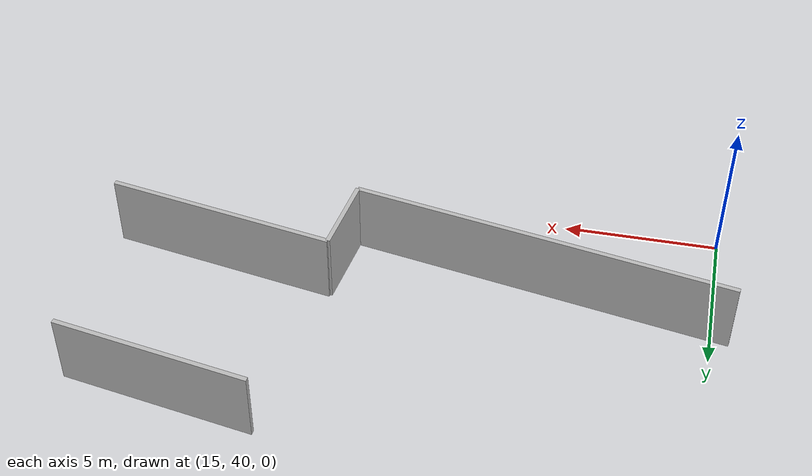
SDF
<?xml version="1.0" ?>
<sdf version="1.6">
  <model name="sps_2003">
    <pose frame="">0 0 0 0 -0 0</pose>
    <static>1</static>
    <self_collide>0</self_collide>
    <allow_auto_disable>0</allow_auto_disable>
    <link name="Wall32">
      <kinematic>0</kinematic>
      <gravity>1</gravity>
      <self_collide>0</self_collide>
      <collision name="collision">
        <geometry>
          <box>
            <size>12.501 0.15 2.5</size>
          </box>
        </geometry>
        <pose frame="">0 0 0 0 -0 0</pose>
      </collision>
      <visual name="visual">
        <geometry>
          <box>
            <size>12.501 0.15 2.5</size>
          </box>
        </geometry>
        <pose frame="">0 0 0 0 -0 0</pose>
        <cast_shadows>1</cast_shadows>
        <transparency>0.0</transparency>
      </visual>
      <pose frame="">20.5447 43.0489 1.25 0 0 -0.181001</pose>
    </link>
    <link name="Wall129">
      <kinematic>0</kinematic>
      <gravity>1</gravity>
      <self_collide>0</self_collide>
      <collision name="collision">
        <geometry>
          <box>
            <size>7.4471 0.15 2.5</size>
          </box>
        </geometry>
        <pose frame="">0 0 0 0 -0 0</pose>
      </collision>
      <visual name="visual">
        <geometry>
          <box>
            <size>7.4471 0.15 2.5</size>
          </box>
        </geometry>
        <pose frame="">0 0 0 0 -0 0</pose>
        <cast_shadows>1</cast_shadows>
        <transparency>0.0</transparency>
      </visual>
      <pose frame="">30.8057 43.7385 1.25 0 -0 2.96219</pose>
    </link>
    <link name="Wall199">
      <kinematic>0</kinematic>
      <gravity>1</gravity>
      <self_collide>0</self_collide>
      <collision name="collision">
        <geometry>
          <box>
            <size>2.51948 0.15 2.5</size>
          </box>
        </geometry>
        <pose frame="">0 0 0 0 -0 0</pose>
      </collision>
      <visual name="visual">
        <geometry>
          <box>
            <size>2.51948 0.15 2.5</size>
          </box>
        </geometry>
        <pose frame="">0 0 0 0 -0 0</pose>
        <cast_shadows>1</cast_shadows>
        <transparency>0.0</transparency>
      </visual>
      <pose frame="">26.9175 43.1633 1.25 0 -0 1.39171</pose>
    </link>
    <link name="Wall544">
      <kinematic>0</kinematic>
      <gravity>1</gravity>
      <self_collide>0</self_collide>
      <collision name="collision">
        <geometry>
          <box>
            <size>6.35803 0.15 2.5</size>
          </box>
        </geometry>
        <pose frame="">0 0 0 0 -0 0</pose>
      </collision>
      <visual name="visual">
        <geometry>
          <box>
            <size>6.35803 0.15 2.5</size>
          </box>
        </geometry>
        <pose frame="">0 0 0 0 -0 0</pose>
        <cast_shadows>1</cast_shadows>
        <transparency>0.0</transparency>
      </visual>
      <pose frame="">31.3415 49.7394 1.25 0 0 -0.179407</pose>
    </link>
  </model>
</sdf>
